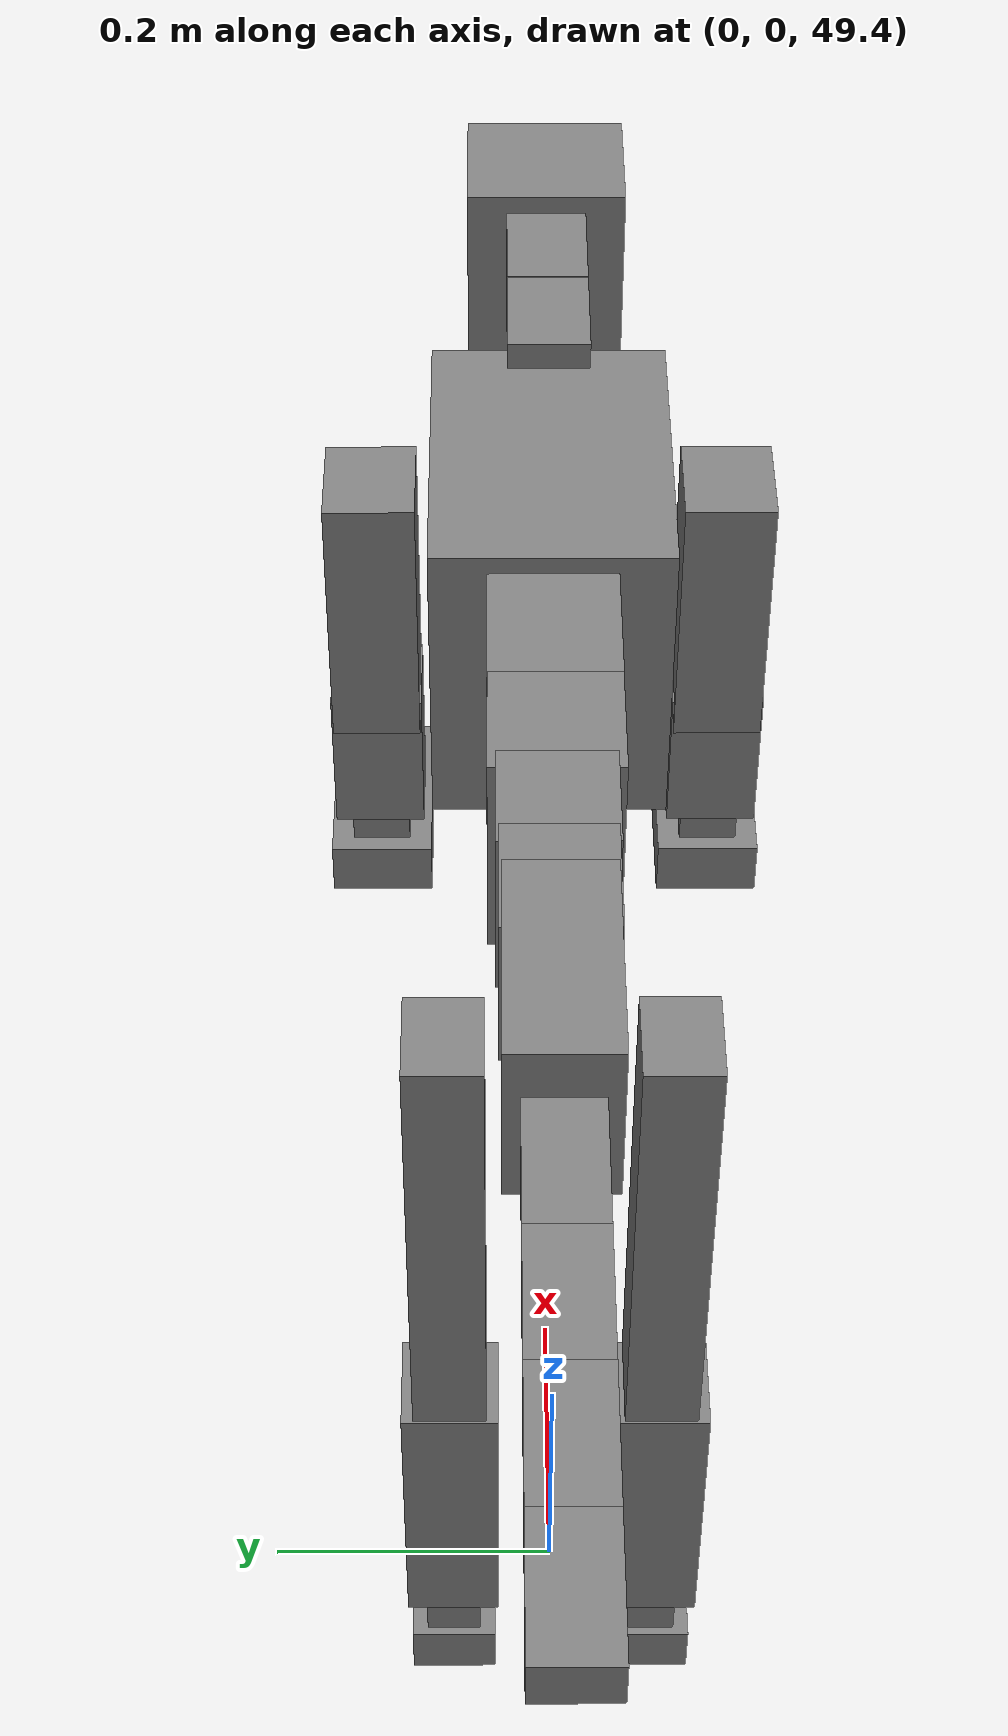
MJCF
<mujoco model="dog">

    <default>
        <joint armature="0.02" stiffness="1" damping="0.2" limited="true"/>
        <geom condim="3" friction="1 0.05 0.05" margin="0.01"/>
        <motor ctrllimited="true" ctrlrange="-1.0 1.0" forcelimited="true" gear="50"/>
    </default>

    <compiler inertiafromgeom="true" angle="radian"/>

    <option timestep="0.016" iterations="50" tolerance="1e-10" solver="Newton" jacobian="dense" cone="pyramidal"/>

    <size nconmax="20000" njmax="60000" nstack="5000000"/>
    <visual>
        <map force="0.1" zfar="30"/>
        <rgba haze="0.15 0.25 0.35 1"/>
        <quality shadowsize="2048"/>
        <global offwidth="800" offheight="800"/>
    </visual>

    <asset>
        <texture type="skybox" builtin="gradient" rgb1="0.3 0.5 0.7" rgb2="0 0 0" width="512" height="512"/>
        <texture name="texplane" type="2d" builtin="checker" rgb1=".2 .3 .4" rgb2=".1 0.15 0.2" width="512" height="512"
                 mark="cross" markrgb=".8 .8 .8"/>
        <texture name="texgeom" type="cube" builtin="flat" mark="cross" width="127" height="1278" rgb1="0.8 0.6 0.4"
                 rgb2="0.8 0.6 0.4" markrgb="1 1 1" random="0.01"/>

        <material name="matplane" reflectance="0.3" texture="texplane" texrepeat="1 1" texuniform="true"/>
        <material name="matgeom" texture="texgeom" texuniform="true" rgba="0.8 0.6 .4 1"/>
    </asset>

    <worldbody>
        <geom name="floor" pos="0 0 0" size="0 0 .25" type="plane" material="matplane" condim="3"/>

        <light directional="false" diffuse=".2 .2 .2" specular="0 0 0" pos="0 0 5" dir="0 0 -1" castshadow="false"/>
        <light mode="targetbodycom" target="torso" directional="false" diffuse=".8 .8 .8" specular="0.3 0.3 0.3"
               pos="0 0 4.0" dir="0 0 -1"/>

        <body name="root" pos="0 0 50">
            <freejoint name="root_1"/>
            <geom type="box" pos="0 0 -0.02" size="0.0774  0.0358  0.063" density="2030"/>

            <body name="spine1" pos="0.054 0 0">
                <joint name="spine1_y" axis="0 1 0" range="0 0.7" limited="true"/>
                <geom type="box" pos="0.02375 0 -0.03" size="0.04375  0.0375  0.05985" density="2030"/>

                <body name="spine2" pos="0.0612 0 0">
                    <joint name="spine2_y" axis="0 1 0" range="-0.15 0.15" limited="true"/>
                    <geom type="box" pos="0.03555  0  -0.04" size="0.04055  0.039  0.06615" density="2030"/>

                    <body name="spine3" pos="0.0730 0 0">
                        <joint name="spine3_y" axis="0 1 0" range="-0.15 0.15" limited="true"/>
                        <geom type="box" pos="0.03555  0  -0.057" size="0.04555  0.0445  0.081" density="2030"/>

                        <body name="spine4" pos="0.0780 0 0">
                            <joint name="spine4_y" axis="0 1 0" range="-0.15 0.15" limited="true"/>
                            <geom type="box" pos="0.05265  0  -0.07" size="0.05265  0.045  0.09135" density="2030"/>

                            <body name="torso" pos="0.1082 0 0">
                                <joint name="torso_y" axis="0 1 0" range="-0.15 0.15" limited="true"/>
                                <geom type="box" pos="0.11925  0  -0.085" size="0.11925  0.085  0.11745"
                                      density="2030"/>

                                <body name="neck1" pos="0.2160  0   0.0180">
                                    <joint name="neck1_y" axis="0 1 0" range="-1.2  -1" limited="true"/>
                                    <geom type="box" pos="0.0423  0  0" size="0.0423  0.03  0.036" density="2325"/>

                                    <body name="neck2" pos="0.0853  0  0">
                                        <joint name="neck2_y" axis="0 1 0" range="0.1  0" limited="true"/>
                                        <geom type="box" pos="0.0423  0  0" size="0.0423  0.03  0.036" density="2325"/>

                                        <body name="head" pos="0.0853  0  0">
                                            <joint name="head_y" axis="0 1 0" range="-0.3  -0.2" limited="true"/>
                                            <geom type="box" pos="0.0531  0  -0.055" size="0.0531  0.06  0.1044"
                                                  density="4030"/>

                                        </body>
                                    </body>
                                </body>

                                <body name="front_shoulder" pos="0.156  0   -0.0480">
                                    <joint name="front_shoulder_y" axis="0 1 0" range="-1 1.5" limited="true"/>
                                    <geom type="box" pos="0 0.13 -0.0800" size="0.0387  0.0331  0.1066" density="1158"/>
                                    <geom type="box" pos="0 -0.13 -0.0800" size="0.0387  0.0331  0.1066"
                                          density="1158"/>

                                    <body name="front_elbow" pos="0  0  -0.1600">
                                        <joint name="front_elbow_y" axis="0 1 0" range="-2 0" limited="true"/>
                                        <geom type="box" pos="0 0.13 -0.0616" size="0.0337  0.0344  0.0616"
                                              density="1081"/>
                                        <geom type="box" pos="0 -0.13 -0.0616" size="0.0337  0.0344  0.0616"
                                              density="1081"/>

                                        <body name="front_wrist" pos="0  0  -0.1232">
                                            <joint name="front_wrist_y" axis="0 1 0" range="-0.2 0" limited="true"/>
                                            <geom type="box" pos="0 0.13 -0.0244" size="0.0201  0.0223  0.0376"
                                                  density="1664"/>
                                            <geom type="box" pos="0 -0.13 -0.0244" size="0.0201  0.0223  0.0376"
                                                  density="1664"/>

                                            <body name="front_finger_end" pos="0  0  -0.0488">
                                                <joint name="front_finger_y" axis="0 1 0" range="-0.4 1"
                                                       limited="true"/>
                                                <geom type="box" pos="0.0395  0.13  -0.0075"
                                                      size="0.0724  0.0395  0.0225" density="1515"/>
                                                <geom type="box" pos="0.0395  -0.13  -0.0075"
                                                      size="0.0724  0.0395  0.0225" density="1515"/>

                                            </body>

                                        </body>
                                    </body>
                                </body>

                            </body>
                        </body>
                    </body>
                </body>
            </body>

            <body name="back_hip" pos="-0.03 0 -0.018">
                <joint name="back_hip_y" axis="0 1 0" range="-1.5 0.3" limited="true"/>
                <geom type="box" pos="0 0.07 -0.1699" size="0.0309  0.0243  0.1927" density="1154"/>
                <geom type="box" pos="0 -0.07 -0.1699" size="0.0309  0.0243  0.1927" density="1154"/>

                <body name="back_knee" pos="0  0  -0.3397">
                    <joint name="back_knee_y" axis="0 1 0" range="0 2.8" limited="true"/>
                    <geom type="box" pos="0 0.07 -0.0994" size="0.0325  0.0321  0.1150" density="1227"/>
                    <geom type="box" pos="0 -0.07 -0.0994" size="0.0325  0.0321  0.1150" density="1227"/>

                    <body name="back_ankle" pos="0  0  -0.1988">
                        <joint name="back_ankle_y" axis="0 1 0" range="-2.2 0" limited="true"/>
                        <geom type="box" pos="0 0.07 -0.0403" size="0.0192  0.0192  0.0515" density="1284"/>
                        <geom type="box" pos="0 -0.07 -0.0403" size="0.0192  0.0192  0.0515" density="1284"/>

                        <body name="back_toe_end" pos="0  0  -0.0806">
                            <joint name="back_toe_y" axis="0 1 0" range="-0.4 1" limited="true"/>
                            <geom type="box" pos="0.0300  0.07  -0.0064" size="0.0551  0.0300  0.0214" density="1515"/>
                            <geom type="box" pos="0.0300  -0.07  -0.0064" size="0.0551  0.0300  0.0214" density="1515"/>

                        </body>
                    </body>
                </body>
            </body>

            <body name="tail1" pos="-0.074 0 -0.006">
                <joint name="tail1_y" axis="0 1 0" range="-0.2 0.2" limited="true"/>
                <geom type="box" pos="-0.0536  0  0" size="0.045  0.025  0.0175" density="1587"/>

                <body name="tail2" pos="-0.09 0 0">
                    <joint name="tail2_y" axis="0 1 0" range="-0.2 0.2" limited="true"/>
                    <geom type="box" pos="-0.0536  0  0" size="0.045  0.025  0.0175" density="1587"/>

                    <body name="tail3" pos="-0.09 0 0">
                        <joint name="tail3_y" axis="0 1 0" range="-0.2 0.2" limited="true"/>
                        <geom type="box" pos="-0.0536  0  0" size="0.045  0.025  0.0175" density="1587"/>

                        <body name="tail4" pos="-0.09 0 0">
                            <joint name="tail4_y" axis="0 1 0" range="-0.2 0.2" limited="true"/>
                            <geom type="box" pos="-0.0536  0  0" size="0.045  0.025  0.0175" density="1587"/>

                        </body>
                    </body>
                </body>
            </body>
        </body>
    </worldbody>

    <actuator>
        <motor joint="spine1_y" forcerange="-150 150     "/>
        <motor joint="spine2_y" forcerange="-150 150     "/>
        <motor joint="spine3_y" forcerange="-150 150     "/>
        <motor joint="spine4_y" forcerange="-150 150     "/>
        <motor joint="torso_y" forcerange="-150 150     "/>
        <motor joint="neck1_y" forcerange="-100 100       "/>
        <motor joint="neck2_y" forcerange="-100 100       "/>
        <motor joint="head_y" forcerange="-150 150       "/>
        <motor joint="front_shoulder_y" forcerange="-170.20 150.16"/>
        <motor joint="front_elbow_y" forcerange="-163.29 187.01"/>
        <motor joint="front_wrist_y" forcerange="-125.95 52.29"/>
        <motor joint="front_finger_y" forcerange="-91.29 79.41"/>
        <motor joint="back_hip_y" forcerange="-309.39 213.99"/>
        <motor joint="back_knee_y" forcerange="-396.32 270.10"/>
        <motor joint="back_angle_y" forcerange="-89.04 117.75"/>
        <motor joint="back_toe_y" forcerange="-100.32 59.92"/>
        <motor joint="tail1_y" forcerange="-50 50     "/>
        <motor joint="tail2_y" forcerange="-50 50     "/>
        <motor joint="tail3_y" forcerange="-50 50     "/>
        <motor joint="tail4_y" forcerange="-50 50     "/>
    </actuator>
</mujoco>
